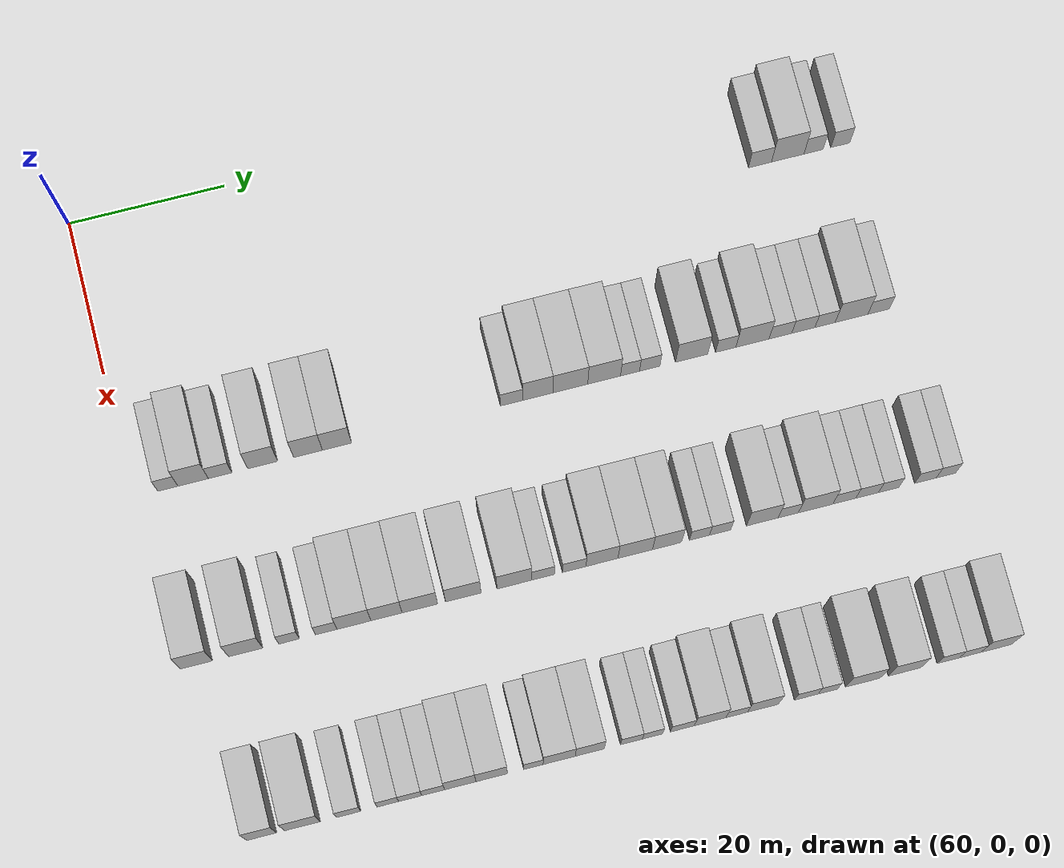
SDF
<sdf version="1.6">
 <world name="default">
  <model name="building_503">
   <static>1</static>
   <pose>69.0000 85.7732 0 0.000000 0.000000 0.000000</pose>
   <link name="link">
    <pose>0 0 3.00 0 0 0</pose>
    <collision name="collision"><geometry><box><size>10.0000 2.9894 6.0000</size></box></geometry></collision>
    <visual name="visual">
     <cast_shadows>0</cast_shadows>
     <geometry><box><size>10.0000 2.9894 6.0000</size></box></geometry>
     <material>
      <script>
       <uri>model://HANNAS_wall/materials/scripts</uri>
       <uri>model://HANNAS_wall/materials/textures</uri>
       <name>vrc/HANNAS_wall</name>
      </script>
     </material>
    </visual>
   </link>
  </model>
  <model name="building_504">
   <static>1</static>
   <pose>69.0000 89.3813 0 0.000000 0.000000 0.000000</pose>
   <link name="link">
    <pose>0 0 4.50 0 0 0</pose>
    <collision name="collision"><geometry><box><size>10.0000 4.2268 9.0000</size></box></geometry></collision>
    <visual name="visual">
     <cast_shadows>0</cast_shadows>
     <geometry><box><size>10.0000 4.2268 9.0000</size></box></geometry>
     <material>
      <script>
       <uri>model://HANNAS_wall/materials/scripts</uri>
       <uri>model://HANNAS_wall/materials/textures</uri>
       <name>vrc/HANNAS_wall</name>
      </script>
     </material>
    </visual>
   </link>
  </model>
  <model name="building_505">
   <static>1</static>
   <pose>69.0000 92.7482 0 0.000000 0.000000 0.000000</pose>
   <link name="link">
    <pose>0 0 3.00 0 0 0</pose>
    <collision name="collision"><geometry><box><size>10.0000 2.5070 6.0000</size></box></geometry></collision>
    <visual name="visual">
     <cast_shadows>0</cast_shadows>
     <geometry><box><size>10.0000 2.5070 6.0000</size></box></geometry>
     <material>
      <script>
       <uri>model://HANNAS_wall/materials/scripts</uri>
       <uri>model://HANNAS_wall/materials/textures</uri>
       <name>vrc/HANNAS_wall</name>
      </script>
     </material>
    </visual>
   </link>
  </model>
  <model name="building_506">
   <static>1</static>
   <pose>69.0000 96.2442 0 0.000000 0.000000 0.000000</pose>
   <link name="link">
    <pose>0 0 3.00 0 0 0</pose>
    <collision name="collision"><geometry><box><size>10.0000 2.4849 6.0000</size></box></geometry></collision>
    <visual name="visual">
     <cast_shadows>0</cast_shadows>
     <geometry><box><size>10.0000 2.4849 6.0000</size></box></geometry>
     <material>
      <script>
       <uri>model://HANNAS_wall/materials/scripts</uri>
       <uri>model://HANNAS_wall/materials/textures</uri>
       <name>vrc/HANNAS_wall</name>
      </script>
     </material>
    </visual>
   </link>
  </model>
  <model name="building_679">
   <static>1</static>
   <pose>91.0000 4.5690 0 0.000000 0.000000 0.000000</pose>
   <link name="link">
    <pose>0 0 3.00 0 0 0</pose>
    <collision name="collision"><geometry><box><size>10.0000 2.5275 6.0000</size></box></geometry></collision>
    <visual name="visual">
     <cast_shadows>0</cast_shadows>
     <geometry><box><size>10.0000 2.5275 6.0000</size></box></geometry>
     <material>
      <script>
       <uri>model://HANNAS_wall/materials/scripts</uri>
       <uri>model://HANNAS_wall/materials/textures</uri>
       <name>vrc/HANNAS_wall</name>
      </script>
     </material>
    </visual>
   </link>
  </model>
  <model name="building_680">
   <static>1</static>
   <pose>91.0000 7.7401 0 0.000000 0.000000 0.000000</pose>
   <link name="link">
    <pose>0 0 4.50 0 0 0</pose>
    <collision name="collision"><geometry><box><size>10.0000 3.8146 9.0000</size></box></geometry></collision>
    <visual name="visual">
     <cast_shadows>0</cast_shadows>
     <geometry><box><size>10.0000 3.8146 9.0000</size></box></geometry>
     <material>
      <script>
       <uri>model://HANNAS_wall/materials/scripts</uri>
       <uri>model://HANNAS_wall/materials/textures</uri>
       <name>vrc/HANNAS_wall</name>
      </script>
     </material>
    </visual>
   </link>
  </model>
  <model name="building_681">
   <static>1</static>
   <pose>91.0000 11.1358 0 0.000000 0.000000 0.000000</pose>
   <link name="link">
    <pose>0 0 3.00 0 0 0</pose>
    <collision name="collision"><geometry><box><size>10.0000 2.9768 6.0000</size></box></geometry></collision>
    <visual name="visual">
     <cast_shadows>0</cast_shadows>
     <geometry><box><size>10.0000 2.9768 6.0000</size></box></geometry>
     <material>
      <script>
       <uri>model://HANNAS_wall/materials/scripts</uri>
       <uri>model://HANNAS_wall/materials/textures</uri>
       <name>vrc/HANNAS_wall</name>
      </script>
     </material>
    </visual>
   </link>
  </model>
  <model name="building_682">
   <static>1</static>
   <pose>91.0000 16.5065 0 0.000000 0.000000 0.000000</pose>
   <link name="link">
    <pose>0 0 4.50 0 0 0</pose>
    <collision name="collision"><geometry><box><size>10.0000 3.7646 9.0000</size></box></geometry></collision>
    <visual name="visual">
     <cast_shadows>0</cast_shadows>
     <geometry><box><size>10.0000 3.7646 9.0000</size></box></geometry>
     <material>
      <script>
       <uri>model://HANNAS_wall/materials/scripts</uri>
       <uri>model://HANNAS_wall/materials/textures</uri>
       <name>vrc/HANNAS_wall</name>
      </script>
     </material>
    </visual>
   </link>
  </model>
  <model name="building_683">
   <static>1</static>
   <pose>91.0000 22.2110 0 0.000000 0.000000 0.000000</pose>
   <link name="link">
    <pose>0 0 4.50 0 0 0</pose>
    <collision name="collision"><geometry><box><size>10.0000 3.6445 9.0000</size></box></geometry></collision>
    <visual name="visual">
     <cast_shadows>0</cast_shadows>
     <geometry><box><size>10.0000 3.6445 9.0000</size></box></geometry>
     <material>
      <script>
       <uri>model://HANNAS_wall/materials/scripts</uri>
       <uri>model://HANNAS_wall/materials/textures</uri>
       <name>vrc/HANNAS_wall</name>
      </script>
     </material>
    </visual>
   </link>
  </model>
  <model name="building_684">
   <static>1</static>
   <pose>91.0000 25.8729 0 0.000000 0.000000 0.000000</pose>
   <link name="link">
    <pose>0 0 4.50 0 0 0</pose>
    <collision name="collision"><geometry><box><size>10.0000 3.6792 9.0000</size></box></geometry></collision>
    <visual name="visual">
     <cast_shadows>0</cast_shadows>
     <geometry><box><size>10.0000 3.6792 9.0000</size></box></geometry>
     <material>
      <script>
       <uri>model://HANNAS_wall/materials/scripts</uri>
       <uri>model://HANNAS_wall/materials/textures</uri>
       <name>vrc/HANNAS_wall</name>
      </script>
     </material>
    </visual>
   </link>
  </model>
  <model name="building_685">
   <static>1</static>
   <pose>91.0000 47.9915 0 0.000000 0.000000 0.000000</pose>
   <link name="link">
    <pose>0 0 3.00 0 0 0</pose>
    <collision name="collision"><geometry><box><size>10.0000 2.8527 6.0000</size></box></geometry></collision>
    <visual name="visual">
     <cast_shadows>0</cast_shadows>
     <geometry><box><size>10.0000 2.8527 6.0000</size></box></geometry>
     <material>
      <script>
       <uri>model://HANNAS_wall/materials/scripts</uri>
       <uri>model://HANNAS_wall/materials/textures</uri>
       <name>vrc/HANNAS_wall</name>
      </script>
     </material>
    </visual>
   </link>
  </model>
  <model name="building_686">
   <static>1</static>
   <pose>91.0000 51.3385 0 0.000000 0.000000 0.000000</pose>
   <link name="link">
    <pose>0 0 4.50 0 0 0</pose>
    <collision name="collision"><geometry><box><size>10.0000 3.8412 9.0000</size></box></geometry></collision>
    <visual name="visual">
     <cast_shadows>0</cast_shadows>
     <geometry><box><size>10.0000 3.8412 9.0000</size></box></geometry>
     <material>
      <script>
       <uri>model://HANNAS_wall/materials/scripts</uri>
       <uri>model://HANNAS_wall/materials/textures</uri>
       <name>vrc/HANNAS_wall</name>
      </script>
     </material>
    </visual>
   </link>
  </model>
  <model name="building_687">
   <static>1</static>
   <pose>91.0000 55.4738 0 0.000000 0.000000 0.000000</pose>
   <link name="link">
    <pose>0 0 4.50 0 0 0</pose>
    <collision name="collision"><geometry><box><size>10.0000 4.4295 9.0000</size></box></geometry></collision>
    <visual name="visual">
     <cast_shadows>0</cast_shadows>
     <geometry><box><size>10.0000 4.4295 9.0000</size></box></geometry>
     <material>
      <script>
       <uri>model://HANNAS_wall/materials/scripts</uri>
       <uri>model://HANNAS_wall/materials/textures</uri>
       <name>vrc/HANNAS_wall</name>
      </script>
     </material>
    </visual>
   </link>
  </model>
  <model name="building_688">
   <static>1</static>
   <pose>91.0000 59.7830 0 0.000000 0.000000 0.000000</pose>
   <link name="link">
    <pose>0 0 4.50 0 0 0</pose>
    <collision name="collision"><geometry><box><size>10.0000 4.1888 9.0000</size></box></geometry></collision>
    <visual name="visual">
     <cast_shadows>0</cast_shadows>
     <geometry><box><size>10.0000 4.1888 9.0000</size></box></geometry>
     <material>
      <script>
       <uri>model://HANNAS_wall/materials/scripts</uri>
       <uri>model://HANNAS_wall/materials/textures</uri>
       <name>vrc/HANNAS_wall</name>
      </script>
     </material>
    </visual>
   </link>
  </model>
  <model name="building_689">
   <static>1</static>
   <pose>91.0000 63.0950 0 0.000000 0.000000 0.000000</pose>
   <link name="link">
    <pose>0 0 3.00 0 0 0</pose>
    <collision name="collision"><geometry><box><size>10.0000 2.4351 6.0000</size></box></geometry></collision>
    <visual name="visual">
     <cast_shadows>0</cast_shadows>
     <geometry><box><size>10.0000 2.4351 6.0000</size></box></geometry>
     <material>
      <script>
       <uri>model://HANNAS_wall/materials/scripts</uri>
       <uri>model://HANNAS_wall/materials/textures</uri>
       <name>vrc/HANNAS_wall</name>
      </script>
     </material>
    </visual>
   </link>
  </model>
  <model name="building_690">
   <static>1</static>
   <pose>91.0000 65.6124 0 0.000000 0.000000 0.000000</pose>
   <link name="link">
    <pose>0 0 3.00 0 0 0</pose>
    <collision name="collision"><geometry><box><size>10.0000 2.5997 6.0000</size></box></geometry></collision>
    <visual name="visual">
     <cast_shadows>0</cast_shadows>
     <geometry><box><size>10.0000 2.5997 6.0000</size></box></geometry>
     <material>
      <script>
       <uri>model://HANNAS_wall/materials/scripts</uri>
       <uri>model://HANNAS_wall/materials/textures</uri>
       <name>vrc/HANNAS_wall</name>
      </script>
     </material>
    </visual>
   </link>
  </model>
  <model name="building_691">
   <static>1</static>
   <pose>91.0000 70.9761 0 0.000000 0.000000 0.000000</pose>
   <link name="link">
    <pose>0 0 4.50 0 0 0</pose>
    <collision name="collision"><geometry><box><size>10.0000 4.1278 9.0000</size></box></geometry></collision>
    <visual name="visual">
     <cast_shadows>0</cast_shadows>
     <geometry><box><size>10.0000 4.1278 9.0000</size></box></geometry>
     <material>
      <script>
       <uri>model://HANNAS_wall/materials/scripts</uri>
       <uri>model://HANNAS_wall/materials/textures</uri>
       <name>vrc/HANNAS_wall</name>
      </script>
     </material>
    </visual>
   </link>
  </model>
  <model name="building_692">
   <static>1</static>
   <pose>91.0000 75.3402 0 0.000000 0.000000 0.000000</pose>
   <link name="link">
    <pose>0 0 3.00 0 0 0</pose>
    <collision name="collision"><geometry><box><size>10.0000 2.6003 6.0000</size></box></geometry></collision>
    <visual name="visual">
     <cast_shadows>0</cast_shadows>
     <geometry><box><size>10.0000 2.6003 6.0000</size></box></geometry>
     <material>
      <script>
       <uri>model://HANNAS_wall/materials/scripts</uri>
       <uri>model://HANNAS_wall/materials/textures</uri>
       <name>vrc/HANNAS_wall</name>
      </script>
     </material>
    </visual>
   </link>
  </model>
  <model name="building_693">
   <static>1</static>
   <pose>91.0000 78.7722 0 0.000000 0.000000 0.000000</pose>
   <link name="link">
    <pose>0 0 4.50 0 0 0</pose>
    <collision name="collision"><geometry><box><size>10.0000 4.2638 9.0000</size></box></geometry></collision>
    <visual name="visual">
     <cast_shadows>0</cast_shadows>
     <geometry><box><size>10.0000 4.2638 9.0000</size></box></geometry>
     <material>
      <script>
       <uri>model://HANNAS_wall/materials/scripts</uri>
       <uri>model://HANNAS_wall/materials/textures</uri>
       <name>vrc/HANNAS_wall</name>
      </script>
     </material>
    </visual>
   </link>
  </model>
  <model name="building_694">
   <static>1</static>
   <pose>91.0000 82.3659 0 0.000000 0.000000 0.000000</pose>
   <link name="link">
    <pose>0 0 3.00 0 0 0</pose>
    <collision name="collision"><geometry><box><size>10.0000 2.9235 6.0000</size></box></geometry></collision>
    <visual name="visual">
     <cast_shadows>0</cast_shadows>
     <geometry><box><size>10.0000 2.9235 6.0000</size></box></geometry>
     <material>
      <script>
       <uri>model://HANNAS_wall/materials/scripts</uri>
       <uri>model://HANNAS_wall/materials/textures</uri>
       <name>vrc/HANNAS_wall</name>
      </script>
     </material>
    </visual>
   </link>
  </model>
  <model name="building_695">
   <static>1</static>
   <pose>91.0000 85.3117 0 0.000000 0.000000 0.000000</pose>
   <link name="link">
    <pose>0 0 3.00 0 0 0</pose>
    <collision name="collision"><geometry><box><size>10.0000 2.9681 6.0000</size></box></geometry></collision>
    <visual name="visual">
     <cast_shadows>0</cast_shadows>
     <geometry><box><size>10.0000 2.9681 6.0000</size></box></geometry>
     <material>
      <script>
       <uri>model://HANNAS_wall/materials/scripts</uri>
       <uri>model://HANNAS_wall/materials/textures</uri>
       <name>vrc/HANNAS_wall</name>
      </script>
     </material>
    </visual>
   </link>
  </model>
  <model name="building_696">
   <static>1</static>
   <pose>91.0000 88.0958 0 0.000000 0.000000 0.000000</pose>
   <link name="link">
    <pose>0 0 3.00 0 0 0</pose>
    <collision name="collision"><geometry><box><size>10.0000 2.6001 6.0000</size></box></geometry></collision>
    <visual name="visual">
     <cast_shadows>0</cast_shadows>
     <geometry><box><size>10.0000 2.6001 6.0000</size></box></geometry>
     <material>
      <script>
       <uri>model://HANNAS_wall/materials/scripts</uri>
       <uri>model://HANNAS_wall/materials/textures</uri>
       <name>vrc/HANNAS_wall</name>
      </script>
     </material>
    </visual>
   </link>
  </model>
  <model name="building_697">
   <static>1</static>
   <pose>91.0000 91.5018 0 0.000000 0.000000 0.000000</pose>
   <link name="link">
    <pose>0 0 4.50 0 0 0</pose>
    <collision name="collision"><geometry><box><size>10.0000 4.2119 9.0000</size></box></geometry></collision>
    <visual name="visual">
     <cast_shadows>0</cast_shadows>
     <geometry><box><size>10.0000 4.2119 9.0000</size></box></geometry>
     <material>
      <script>
       <uri>model://HANNAS_wall/materials/scripts</uri>
       <uri>model://HANNAS_wall/materials/textures</uri>
       <name>vrc/HANNAS_wall</name>
      </script>
     </material>
    </visual>
   </link>
  </model>
  <model name="building_698">
   <static>1</static>
   <pose>91.0000 95.0048 0 0.000000 0.000000 0.000000</pose>
   <link name="link">
    <pose>0 0 3.00 0 0 0</pose>
    <collision name="collision"><geometry><box><size>10.0000 2.7942 6.0000</size></box></geometry></collision>
    <visual name="visual">
     <cast_shadows>0</cast_shadows>
     <geometry><box><size>10.0000 2.7942 6.0000</size></box></geometry>
     <material>
      <script>
       <uri>model://HANNAS_wall/materials/scripts</uri>
       <uri>model://HANNAS_wall/materials/textures</uri>
       <name>vrc/HANNAS_wall</name>
      </script>
     </material>
    </visual>
   </link>
  </model>
  <model name="building_868">
   <static>1</static>
   <pose>113.0000 3.1298 0 0.000000 0.000000 0.000000</pose>
   <link name="link">
    <pose>0 0 4.50 0 0 0</pose>
    <collision name="collision"><geometry><box><size>10.0000 3.9790 9.0000</size></box></geometry></collision>
    <visual name="visual">
     <cast_shadows>0</cast_shadows>
     <geometry><box><size>10.0000 3.9790 9.0000</size></box></geometry>
     <material>
      <script>
       <uri>model://HANNAS_wall/materials/scripts</uri>
       <uri>model://HANNAS_wall/materials/textures</uri>
       <name>vrc/HANNAS_wall</name>
      </script>
     </material>
    </visual>
   </link>
  </model>
  <model name="building_869">
   <static>1</static>
   <pose>113.0000 9.2442 0 0.000000 0.000000 0.000000</pose>
   <link name="link">
    <pose>0 0 4.50 0 0 0</pose>
    <collision name="collision"><geometry><box><size>10.0000 4.2498 9.0000</size></box></geometry></collision>
    <visual name="visual">
     <cast_shadows>0</cast_shadows>
     <geometry><box><size>10.0000 4.2498 9.0000</size></box></geometry>
     <material>
      <script>
       <uri>model://HANNAS_wall/materials/scripts</uri>
       <uri>model://HANNAS_wall/materials/textures</uri>
       <name>vrc/HANNAS_wall</name>
      </script>
     </material>
    </visual>
   </link>
  </model>
  <model name="building_870">
   <static>1</static>
   <pose>113.0000 14.6467 0 0.000000 0.000000 0.000000</pose>
   <link name="link">
    <pose>0 0 3.00 0 0 0</pose>
    <collision name="collision"><geometry><box><size>10.0000 2.5551 6.0000</size></box></geometry></collision>
    <visual name="visual">
     <cast_shadows>0</cast_shadows>
     <geometry><box><size>10.0000 2.5551 6.0000</size></box></geometry>
     <material>
      <script>
       <uri>model://HANNAS_wall/materials/scripts</uri>
       <uri>model://HANNAS_wall/materials/textures</uri>
       <name>vrc/HANNAS_wall</name>
      </script>
     </material>
    </visual>
   </link>
  </model>
  <model name="building_871">
   <static>1</static>
   <pose>113.0000 19.2744 0 0.000000 0.000000 0.000000</pose>
   <link name="link">
    <pose>0 0 3.00 0 0 0</pose>
    <collision name="collision"><geometry><box><size>10.0000 2.7004 6.0000</size></box></geometry></collision>
    <visual name="visual">
     <cast_shadows>0</cast_shadows>
     <geometry><box><size>10.0000 2.7004 6.0000</size></box></geometry>
     <material>
      <script>
       <uri>model://HANNAS_wall/materials/scripts</uri>
       <uri>model://HANNAS_wall/materials/textures</uri>
       <name>vrc/HANNAS_wall</name>
      </script>
     </material>
    </visual>
   </link>
  </model>
  <model name="building_872">
   <static>1</static>
   <pose>113.0000 22.7261 0 0.000000 0.000000 0.000000</pose>
   <link name="link">
    <pose>0 0 4.50 0 0 0</pose>
    <collision name="collision"><geometry><box><size>10.0000 4.2031 9.0000</size></box></geometry></collision>
    <visual name="visual">
     <cast_shadows>0</cast_shadows>
     <geometry><box><size>10.0000 4.2031 9.0000</size></box></geometry>
     <material>
      <script>
       <uri>model://HANNAS_wall/materials/scripts</uri>
       <uri>model://HANNAS_wall/materials/textures</uri>
       <name>vrc/HANNAS_wall</name>
      </script>
     </material>
    </visual>
   </link>
  </model>
  <model name="building_873">
   <static>1</static>
   <pose>113.0000 26.7769 0 0.000000 0.000000 0.000000</pose>
   <link name="link">
    <pose>0 0 4.50 0 0 0</pose>
    <collision name="collision"><geometry><box><size>10.0000 3.8986 9.0000</size></box></geometry></collision>
    <visual name="visual">
     <cast_shadows>0</cast_shadows>
     <geometry><box><size>10.0000 3.8986 9.0000</size></box></geometry>
     <material>
      <script>
       <uri>model://HANNAS_wall/materials/scripts</uri>
       <uri>model://HANNAS_wall/materials/textures</uri>
       <name>vrc/HANNAS_wall</name>
      </script>
     </material>
    </visual>
   </link>
  </model>
  <model name="building_874">
   <static>1</static>
   <pose>113.0000 30.9383 0 0.000000 0.000000 0.000000</pose>
   <link name="link">
    <pose>0 0 4.50 0 0 0</pose>
    <collision name="collision"><geometry><box><size>10.0000 4.4242 9.0000</size></box></geometry></collision>
    <visual name="visual">
     <cast_shadows>0</cast_shadows>
     <geometry><box><size>10.0000 4.4242 9.0000</size></box></geometry>
     <material>
      <script>
       <uri>model://HANNAS_wall/materials/scripts</uri>
       <uri>model://HANNAS_wall/materials/textures</uri>
       <name>vrc/HANNAS_wall</name>
      </script>
     </material>
    </visual>
   </link>
  </model>
  <model name="building_875">
   <static>1</static>
   <pose>113.0000 36.3707 0 0.000000 0.000000 0.000000</pose>
   <link name="link">
    <pose>0 0 4.50 0 0 0</pose>
    <collision name="collision"><geometry><box><size>10.0000 4.4405 9.0000</size></box></geometry></collision>
    <visual name="visual">
     <cast_shadows>0</cast_shadows>
     <geometry><box><size>10.0000 4.4405 9.0000</size></box></geometry>
     <material>
      <script>
       <uri>model://HANNAS_wall/materials/scripts</uri>
       <uri>model://HANNAS_wall/materials/textures</uri>
       <name>vrc/HANNAS_wall</name>
      </script>
     </material>
    </visual>
   </link>
  </model>
  <model name="building_876">
   <static>1</static>
   <pose>113.0000 42.7768 0 0.000000 0.000000 0.000000</pose>
   <link name="link">
    <pose>0 0 4.50 0 0 0</pose>
    <collision name="collision"><geometry><box><size>10.0000 4.3717 9.0000</size></box></geometry></collision>
    <visual name="visual">
     <cast_shadows>0</cast_shadows>
     <geometry><box><size>10.0000 4.3717 9.0000</size></box></geometry>
     <material>
      <script>
       <uri>model://HANNAS_wall/materials/scripts</uri>
       <uri>model://HANNAS_wall/materials/textures</uri>
       <name>vrc/HANNAS_wall</name>
      </script>
     </material>
    </visual>
   </link>
  </model>
  <model name="building_877">
   <static>1</static>
   <pose>113.0000 46.3763 0 0.000000 0.000000 0.000000</pose>
   <link name="link">
    <pose>0 0 3.00 0 0 0</pose>
    <collision name="collision"><geometry><box><size>10.0000 2.8271 6.0000</size></box></geometry></collision>
    <visual name="visual">
     <cast_shadows>0</cast_shadows>
     <geometry><box><size>10.0000 2.8271 6.0000</size></box></geometry>
     <material>
      <script>
       <uri>model://HANNAS_wall/materials/scripts</uri>
       <uri>model://HANNAS_wall/materials/textures</uri>
       <name>vrc/HANNAS_wall</name>
      </script>
     </material>
    </visual>
   </link>
  </model>
  <model name="building_878">
   <static>1</static>
   <pose>113.0000 50.2694 0 0.000000 0.000000 0.000000</pose>
   <link name="link">
    <pose>0 0 3.00 0 0 0</pose>
    <collision name="collision"><geometry><box><size>10.0000 2.9590 6.0000</size></box></geometry></collision>
    <visual name="visual">
     <cast_shadows>0</cast_shadows>
     <geometry><box><size>10.0000 2.9590 6.0000</size></box></geometry>
     <material>
      <script>
       <uri>model://HANNAS_wall/materials/scripts</uri>
       <uri>model://HANNAS_wall/materials/textures</uri>
       <name>vrc/HANNAS_wall</name>
      </script>
     </material>
    </visual>
   </link>
  </model>
  <model name="building_879">
   <static>1</static>
   <pose>113.0000 53.7605 0 0.000000 0.000000 0.000000</pose>
   <link name="link">
    <pose>0 0 4.50 0 0 0</pose>
    <collision name="collision"><geometry><box><size>10.0000 4.0233 9.0000</size></box></geometry></collision>
    <visual name="visual">
     <cast_shadows>0</cast_shadows>
     <geometry><box><size>10.0000 4.0233 9.0000</size></box></geometry>
     <material>
      <script>
       <uri>model://HANNAS_wall/materials/scripts</uri>
       <uri>model://HANNAS_wall/materials/textures</uri>
       <name>vrc/HANNAS_wall</name>
      </script>
     </material>
    </visual>
   </link>
  </model>
  <model name="building_880">
   <static>1</static>
   <pose>113.0000 57.9547 0 0.000000 0.000000 0.000000</pose>
   <link name="link">
    <pose>0 0 4.50 0 0 0</pose>
    <collision name="collision"><geometry><box><size>10.0000 4.3651 9.0000</size></box></geometry></collision>
    <visual name="visual">
     <cast_shadows>0</cast_shadows>
     <geometry><box><size>10.0000 4.3651 9.0000</size></box></geometry>
     <material>
      <script>
       <uri>model://HANNAS_wall/materials/scripts</uri>
       <uri>model://HANNAS_wall/materials/textures</uri>
       <name>vrc/HANNAS_wall</name>
      </script>
     </material>
    </visual>
   </link>
  </model>
  <model name="building_881">
   <static>1</static>
   <pose>113.0000 61.9706 0 0.000000 0.000000 0.000000</pose>
   <link name="link">
    <pose>0 0 4.50 0 0 0</pose>
    <collision name="collision"><geometry><box><size>10.0000 3.6666 9.0000</size></box></geometry></collision>
    <visual name="visual">
     <cast_shadows>0</cast_shadows>
     <geometry><box><size>10.0000 3.6666 9.0000</size></box></geometry>
     <material>
      <script>
       <uri>model://HANNAS_wall/materials/scripts</uri>
       <uri>model://HANNAS_wall/materials/textures</uri>
       <name>vrc/HANNAS_wall</name>
      </script>
     </material>
    </visual>
   </link>
  </model>
  <model name="building_882">
   <static>1</static>
   <pose>113.0000 66.0667 0 0.000000 0.000000 0.000000</pose>
   <link name="link">
    <pose>0 0 3.00 0 0 0</pose>
    <collision name="collision"><geometry><box><size>10.0000 2.5257 6.0000</size></box></geometry></collision>
    <visual name="visual">
     <cast_shadows>0</cast_shadows>
     <geometry><box><size>10.0000 2.5257 6.0000</size></box></geometry>
     <material>
      <script>
       <uri>model://HANNAS_wall/materials/scripts</uri>
       <uri>model://HANNAS_wall/materials/textures</uri>
       <name>vrc/HANNAS_wall</name>
      </script>
     </material>
    </visual>
   </link>
  </model>
  <model name="building_883">
   <static>1</static>
   <pose>113.0000 68.6682 0 0.000000 0.000000 0.000000</pose>
   <link name="link">
    <pose>0 0 3.00 0 0 0</pose>
    <collision name="collision"><geometry><box><size>10.0000 2.6773 6.0000</size></box></geometry></collision>
    <visual name="visual">
     <cast_shadows>0</cast_shadows>
     <geometry><box><size>10.0000 2.6773 6.0000</size></box></geometry>
     <material>
      <script>
       <uri>model://HANNAS_wall/materials/scripts</uri>
       <uri>model://HANNAS_wall/materials/textures</uri>
       <name>vrc/HANNAS_wall</name>
      </script>
     </material>
    </visual>
   </link>
  </model>
  <model name="building_884">
   <static>1</static>
   <pose>113.0000 74.0028 0 0.000000 0.000000 0.000000</pose>
   <link name="link">
    <pose>0 0 4.50 0 0 0</pose>
    <collision name="collision"><geometry><box><size>10.0000 3.9918 9.0000</size></box></geometry></collision>
    <visual name="visual">
     <cast_shadows>0</cast_shadows>
     <geometry><box><size>10.0000 3.9918 9.0000</size></box></geometry>
     <material>
      <script>
       <uri>model://HANNAS_wall/materials/scripts</uri>
       <uri>model://HANNAS_wall/materials/textures</uri>
       <name>vrc/HANNAS_wall</name>
      </script>
     </material>
    </visual>
   </link>
  </model>
  <model name="building_885">
   <static>1</static>
   <pose>113.0000 77.2912 0 0.000000 0.000000 0.000000</pose>
   <link name="link">
    <pose>0 0 3.00 0 0 0</pose>
    <collision name="collision"><geometry><box><size>10.0000 2.5850 6.0000</size></box></geometry></collision>
    <visual name="visual">
     <cast_shadows>0</cast_shadows>
     <geometry><box><size>10.0000 2.5850 6.0000</size></box></geometry>
     <material>
      <script>
       <uri>model://HANNAS_wall/materials/scripts</uri>
       <uri>model://HANNAS_wall/materials/textures</uri>
       <name>vrc/HANNAS_wall</name>
      </script>
     </material>
    </visual>
   </link>
  </model>
  <model name="building_886">
   <static>1</static>
   <pose>113.0000 80.7679 0 0.000000 0.000000 0.000000</pose>
   <link name="link">
    <pose>0 0 4.50 0 0 0</pose>
    <collision name="collision"><geometry><box><size>10.0000 4.3685 9.0000</size></box></geometry></collision>
    <visual name="visual">
     <cast_shadows>0</cast_shadows>
     <geometry><box><size>10.0000 4.3685 9.0000</size></box></geometry>
     <material>
      <script>
       <uri>model://HANNAS_wall/materials/scripts</uri>
       <uri>model://HANNAS_wall/materials/textures</uri>
       <name>vrc/HANNAS_wall</name>
      </script>
     </material>
    </visual>
   </link>
  </model>
  <model name="building_887">
   <static>1</static>
   <pose>113.0000 84.4103 0 0.000000 0.000000 0.000000</pose>
   <link name="link">
    <pose>0 0 3.00 0 0 0</pose>
    <collision name="collision"><geometry><box><size>10.0000 2.9162 6.0000</size></box></geometry></collision>
    <visual name="visual">
     <cast_shadows>0</cast_shadows>
     <geometry><box><size>10.0000 2.9162 6.0000</size></box></geometry>
     <material>
      <script>
       <uri>model://HANNAS_wall/materials/scripts</uri>
       <uri>model://HANNAS_wall/materials/textures</uri>
       <name>vrc/HANNAS_wall</name>
      </script>
     </material>
    </visual>
   </link>
  </model>
  <model name="building_888">
   <static>1</static>
   <pose>113.0000 87.3077 0 0.000000 0.000000 0.000000</pose>
   <link name="link">
    <pose>0 0 3.00 0 0 0</pose>
    <collision name="collision"><geometry><box><size>10.0000 2.8788 6.0000</size></box></geometry></collision>
    <visual name="visual">
     <cast_shadows>0</cast_shadows>
     <geometry><box><size>10.0000 2.8788 6.0000</size></box></geometry>
     <material>
      <script>
       <uri>model://HANNAS_wall/materials/scripts</uri>
       <uri>model://HANNAS_wall/materials/textures</uri>
       <name>vrc/HANNAS_wall</name>
      </script>
     </material>
    </visual>
   </link>
  </model>
  <model name="building_889">
   <static>1</static>
   <pose>113.0000 90.0576 0 0.000000 0.000000 0.000000</pose>
   <link name="link">
    <pose>0 0 3.00 0 0 0</pose>
    <collision name="collision"><geometry><box><size>10.0000 2.6209 6.0000</size></box></geometry></collision>
    <visual name="visual">
     <cast_shadows>0</cast_shadows>
     <geometry><box><size>10.0000 2.6209 6.0000</size></box></geometry>
     <material>
      <script>
       <uri>model://HANNAS_wall/materials/scripts</uri>
       <uri>model://HANNAS_wall/materials/textures</uri>
       <name>vrc/HANNAS_wall</name>
      </script>
     </material>
    </visual>
   </link>
  </model>
  <model name="building_890">
   <static>1</static>
   <pose>113.0000 94.7495 0 0.000000 0.000000 0.000000</pose>
   <link name="link">
    <pose>0 0 3.00 0 0 0</pose>
    <collision name="collision"><geometry><box><size>10.0000 2.7629 6.0000</size></box></geometry></collision>
    <visual name="visual">
     <cast_shadows>0</cast_shadows>
     <geometry><box><size>10.0000 2.7629 6.0000</size></box></geometry>
     <material>
      <script>
       <uri>model://HANNAS_wall/materials/scripts</uri>
       <uri>model://HANNAS_wall/materials/textures</uri>
       <name>vrc/HANNAS_wall</name>
      </script>
     </material>
    </visual>
   </link>
  </model>
  <model name="building_891">
   <static>1</static>
   <pose>113.0000 97.3684 0 0.000000 0.000000 0.000000</pose>
   <link name="link">
    <pose>0 0 3.00 0 0 0</pose>
    <collision name="collision"><geometry><box><size>10.0000 2.4749 6.0000</size></box></geometry></collision>
    <visual name="visual">
     <cast_shadows>0</cast_shadows>
     <geometry><box><size>10.0000 2.4749 6.0000</size></box></geometry>
     <material>
      <script>
       <uri>model://HANNAS_wall/materials/scripts</uri>
       <uri>model://HANNAS_wall/materials/textures</uri>
       <name>vrc/HANNAS_wall</name>
      </script>
     </material>
    </visual>
   </link>
  </model>
  <model name="building_1055">
   <static>1</static>
   <pose>135.0000 6.1054 0 0.000000 0.000000 0.000000</pose>
   <link name="link">
    <pose>0 0 4.50 0 0 0</pose>
    <collision name="collision"><geometry><box><size>10.0000 3.6375 9.0000</size></box></geometry></collision>
    <visual name="visual">
     <cast_shadows>0</cast_shadows>
     <geometry><box><size>10.0000 3.6375 9.0000</size></box></geometry>
     <material>
      <script>
       <uri>model://HANNAS_wall/materials/scripts</uri>
       <uri>model://HANNAS_wall/materials/textures</uri>
       <name>vrc/HANNAS_wall</name>
      </script>
     </material>
    </visual>
   </link>
  </model>
  <model name="building_1056">
   <static>1</static>
   <pose>135.0000 11.1089 0 0.000000 0.000000 0.000000</pose>
   <link name="link">
    <pose>0 0 4.50 0 0 0</pose>
    <collision name="collision"><geometry><box><size>10.0000 4.3696 9.0000</size></box></geometry></collision>
    <visual name="visual">
     <cast_shadows>0</cast_shadows>
     <geometry><box><size>10.0000 4.3696 9.0000</size></box></geometry>
     <material>
      <script>
       <uri>model://HANNAS_wall/materials/scripts</uri>
       <uri>model://HANNAS_wall/materials/textures</uri>
       <name>vrc/HANNAS_wall</name>
      </script>
     </material>
    </visual>
   </link>
  </model>
  <model name="building_1057">
   <static>1</static>
   <pose>135.0000 16.7800 0 0.000000 0.000000 0.000000</pose>
   <link name="link">
    <pose>0 0 3.00 0 0 0</pose>
    <collision name="collision"><geometry><box><size>10.0000 2.9725 6.0000</size></box></geometry></collision>
    <visual name="visual">
     <cast_shadows>0</cast_shadows>
     <geometry><box><size>10.0000 2.9725 6.0000</size></box></geometry>
     <material>
      <script>
       <uri>model://HANNAS_wall/materials/scripts</uri>
       <uri>model://HANNAS_wall/materials/textures</uri>
       <name>vrc/HANNAS_wall</name>
      </script>
     </material>
    </visual>
   </link>
  </model>
  <model name="building_1058">
   <static>1</static>
   <pose>135.0000 21.5898 0 0.000000 0.000000 0.000000</pose>
   <link name="link">
    <pose>0 0 3.00 0 0 0</pose>
    <collision name="collision"><geometry><box><size>10.0000 2.6471 6.0000</size></box></geometry></collision>
    <visual name="visual">
     <cast_shadows>0</cast_shadows>
     <geometry><box><size>10.0000 2.6471 6.0000</size></box></geometry>
     <material>
      <script>
       <uri>model://HANNAS_wall/materials/scripts</uri>
       <uri>model://HANNAS_wall/materials/textures</uri>
       <name>vrc/HANNAS_wall</name>
      </script>
     </material>
    </visual>
   </link>
  </model>
  <model name="building_1059">
   <static>1</static>
   <pose>135.0000 24.3389 0 0.000000 0.000000 0.000000</pose>
   <link name="link">
    <pose>0 0 3.00 0 0 0</pose>
    <collision name="collision"><geometry><box><size>10.0000 2.8512 6.0000</size></box></geometry></collision>
    <visual name="visual">
     <cast_shadows>0</cast_shadows>
     <geometry><box><size>10.0000 2.8512 6.0000</size></box></geometry>
     <material>
      <script>
       <uri>model://HANNAS_wall/materials/scripts</uri>
       <uri>model://HANNAS_wall/materials/textures</uri>
       <name>vrc/HANNAS_wall</name>
      </script>
     </material>
    </visual>
   </link>
  </model>
  <model name="building_1060">
   <static>1</static>
   <pose>135.0000 27.1635 0 0.000000 0.000000 0.000000</pose>
   <link name="link">
    <pose>0 0 3.00 0 0 0</pose>
    <collision name="collision"><geometry><box><size>10.0000 2.7980 6.0000</size></box></geometry></collision>
    <visual name="visual">
     <cast_shadows>0</cast_shadows>
     <geometry><box><size>10.0000 2.7980 6.0000</size></box></geometry>
     <material>
      <script>
       <uri>model://HANNAS_wall/materials/scripts</uri>
       <uri>model://HANNAS_wall/materials/textures</uri>
       <name>vrc/HANNAS_wall</name>
      </script>
     </material>
    </visual>
   </link>
  </model>
  <model name="building_1061">
   <static>1</static>
   <pose>135.0000 30.4983 0 0.000000 0.000000 0.000000</pose>
   <link name="link">
    <pose>0 0 4.50 0 0 0</pose>
    <collision name="collision"><geometry><box><size>10.0000 3.8718 9.0000</size></box></geometry></collision>
    <visual name="visual">
     <cast_shadows>0</cast_shadows>
     <geometry><box><size>10.0000 3.8718 9.0000</size></box></geometry>
     <material>
      <script>
       <uri>model://HANNAS_wall/materials/scripts</uri>
       <uri>model://HANNAS_wall/materials/textures</uri>
       <name>vrc/HANNAS_wall</name>
      </script>
     </material>
    </visual>
   </link>
  </model>
  <model name="building_1062">
   <static>1</static>
   <pose>135.0000 34.3791 0 0.000000 0.000000 0.000000</pose>
   <link name="link">
    <pose>0 0 4.50 0 0 0</pose>
    <collision name="collision"><geometry><box><size>10.0000 3.8896 9.0000</size></box></geometry></collision>
    <visual name="visual">
     <cast_shadows>0</cast_shadows>
     <geometry><box><size>10.0000 3.8896 9.0000</size></box></geometry>
     <material>
      <script>
       <uri>model://HANNAS_wall/materials/scripts</uri>
       <uri>model://HANNAS_wall/materials/textures</uri>
       <name>vrc/HANNAS_wall</name>
      </script>
     </material>
    </visual>
   </link>
  </model>
  <model name="building_1063">
   <static>1</static>
   <pose>135.0000 39.5305 0 0.000000 0.000000 0.000000</pose>
   <link name="link">
    <pose>0 0 3.00 0 0 0</pose>
    <collision name="collision"><geometry><box><size>10.0000 2.4132 6.0000</size></box></geometry></collision>
    <visual name="visual">
     <cast_shadows>0</cast_shadows>
     <geometry><box><size>10.0000 2.4132 6.0000</size></box></geometry>
     <material>
      <script>
       <uri>model://HANNAS_wall/materials/scripts</uri>
       <uri>model://HANNAS_wall/materials/textures</uri>
       <name>vrc/HANNAS_wall</name>
      </script>
     </material>
    </visual>
   </link>
  </model>
  <model name="building_1064">
   <static>1</static>
   <pose>135.0000 42.7266 0 0.000000 0.000000 0.000000</pose>
   <link name="link">
    <pose>0 0 4.50 0 0 0</pose>
    <collision name="collision"><geometry><box><size>10.0000 3.9791 9.0000</size></box></geometry></collision>
    <visual name="visual">
     <cast_shadows>0</cast_shadows>
     <geometry><box><size>10.0000 3.9791 9.0000</size></box></geometry>
     <material>
      <script>
       <uri>model://HANNAS_wall/materials/scripts</uri>
       <uri>model://HANNAS_wall/materials/textures</uri>
       <name>vrc/HANNAS_wall</name>
      </script>
     </material>
    </visual>
   </link>
  </model>
  <model name="building_1065">
   <static>1</static>
   <pose>135.0000 46.5171 0 0.000000 0.000000 0.000000</pose>
   <link name="link">
    <pose>0 0 4.50 0 0 0</pose>
    <collision name="collision"><geometry><box><size>10.0000 3.6020 9.0000</size></box></geometry></collision>
    <visual name="visual">
     <cast_shadows>0</cast_shadows>
     <geometry><box><size>10.0000 3.6020 9.0000</size></box></geometry>
     <material>
      <script>
       <uri>model://HANNAS_wall/materials/scripts</uri>
       <uri>model://HANNAS_wall/materials/textures</uri>
       <name>vrc/HANNAS_wall</name>
      </script>
     </material>
    </visual>
   </link>
  </model>
  <model name="building_1066">
   <static>1</static>
   <pose>135.0000 51.6804 0 0.000000 0.000000 0.000000</pose>
   <link name="link">
    <pose>0 0 3.00 0 0 0</pose>
    <collision name="collision"><geometry><box><size>10.0000 2.7245 6.0000</size></box></geometry></collision>
    <visual name="visual">
     <cast_shadows>0</cast_shadows>
     <geometry><box><size>10.0000 2.7245 6.0000</size></box></geometry>
     <material>
      <script>
       <uri>model://HANNAS_wall/materials/scripts</uri>
       <uri>model://HANNAS_wall/materials/textures</uri>
       <name>vrc/HANNAS_wall</name>
      </script>
     </material>
    </visual>
   </link>
  </model>
  <model name="building_1067">
   <static>1</static>
   <pose>135.0000 54.2911 0 0.000000 0.000000 0.000000</pose>
   <link name="link">
    <pose>0 0 3.00 0 0 0</pose>
    <collision name="collision"><geometry><box><size>10.0000 2.4969 6.0000</size></box></geometry></collision>
    <visual name="visual">
     <cast_shadows>0</cast_shadows>
     <geometry><box><size>10.0000 2.4969 6.0000</size></box></geometry>
     <material>
      <script>
       <uri>model://HANNAS_wall/materials/scripts</uri>
       <uri>model://HANNAS_wall/materials/textures</uri>
       <name>vrc/HANNAS_wall</name>
      </script>
     </material>
    </visual>
   </link>
  </model>
  <model name="building_1068">
   <static>1</static>
   <pose>135.0000 58.0160 0 0.000000 0.000000 0.000000</pose>
   <link name="link">
    <pose>0 0 3.00 0 0 0</pose>
    <collision name="collision"><geometry><box><size>10.0000 2.9530 6.0000</size></box></geometry></collision>
    <visual name="visual">
     <cast_shadows>0</cast_shadows>
     <geometry><box><size>10.0000 2.9530 6.0000</size></box></geometry>
     <material>
      <script>
       <uri>model://HANNAS_wall/materials/scripts</uri>
       <uri>model://HANNAS_wall/materials/textures</uri>
       <name>vrc/HANNAS_wall</name>
      </script>
     </material>
    </visual>
   </link>
  </model>
  <model name="building_1069">
   <static>1</static>
   <pose>135.0000 61.4637 0 0.000000 0.000000 0.000000</pose>
   <link name="link">
    <pose>0 0 4.50 0 0 0</pose>
    <collision name="collision"><geometry><box><size>10.0000 3.9423 9.0000</size></box></geometry></collision>
    <visual name="visual">
     <cast_shadows>0</cast_shadows>
     <geometry><box><size>10.0000 3.9423 9.0000</size></box></geometry>
     <material>
      <script>
       <uri>model://HANNAS_wall/materials/scripts</uri>
       <uri>model://HANNAS_wall/materials/textures</uri>
       <name>vrc/HANNAS_wall</name>
      </script>
     </material>
    </visual>
   </link>
  </model>
  <model name="building_1070">
   <static>1</static>
   <pose>135.0000 64.7793 0 0.000000 0.000000 0.000000</pose>
   <link name="link">
    <pose>0 0 3.00 0 0 0</pose>
    <collision name="collision"><geometry><box><size>10.0000 2.6889 6.0000</size></box></geometry></collision>
    <visual name="visual">
     <cast_shadows>0</cast_shadows>
     <geometry><box><size>10.0000 2.6889 6.0000</size></box></geometry>
     <material>
      <script>
       <uri>model://HANNAS_wall/materials/scripts</uri>
       <uri>model://HANNAS_wall/materials/textures</uri>
       <name>vrc/HANNAS_wall</name>
      </script>
     </material>
    </visual>
   </link>
  </model>
  <model name="building_1071">
   <static>1</static>
   <pose>135.0000 68.0591 0 0.000000 0.000000 0.000000</pose>
   <link name="link">
    <pose>0 0 4.50 0 0 0</pose>
    <collision name="collision"><geometry><box><size>10.0000 3.8706 9.0000</size></box></geometry></collision>
    <visual name="visual">
     <cast_shadows>0</cast_shadows>
     <geometry><box><size>10.0000 3.8706 9.0000</size></box></geometry>
     <material>
      <script>
       <uri>model://HANNAS_wall/materials/scripts</uri>
       <uri>model://HANNAS_wall/materials/textures</uri>
       <name>vrc/HANNAS_wall</name>
      </script>
     </material>
    </visual>
   </link>
  </model>
  <model name="building_1072">
   <static>1</static>
   <pose>135.0000 73.4825 0 0.000000 0.000000 0.000000</pose>
   <link name="link">
    <pose>0 0 3.00 0 0 0</pose>
    <collision name="collision"><geometry><box><size>10.0000 2.9762 6.0000</size></box></geometry></collision>
    <visual name="visual">
     <cast_shadows>0</cast_shadows>
     <geometry><box><size>10.0000 2.9762 6.0000</size></box></geometry>
     <material>
      <script>
       <uri>model://HANNAS_wall/materials/scripts</uri>
       <uri>model://HANNAS_wall/materials/textures</uri>
       <name>vrc/HANNAS_wall</name>
      </script>
     </material>
    </visual>
   </link>
  </model>
  <model name="building_1073">
   <static>1</static>
   <pose>135.0000 76.1816 0 0.000000 0.000000 0.000000</pose>
   <link name="link">
    <pose>0 0 3.00 0 0 0</pose>
    <collision name="collision"><geometry><box><size>10.0000 2.4220 6.0000</size></box></geometry></collision>
    <visual name="visual">
     <cast_shadows>0</cast_shadows>
     <geometry><box><size>10.0000 2.4220 6.0000</size></box></geometry>
     <material>
      <script>
       <uri>model://HANNAS_wall/materials/scripts</uri>
       <uri>model://HANNAS_wall/materials/textures</uri>
       <name>vrc/HANNAS_wall</name>
      </script>
     </material>
    </visual>
   </link>
  </model>
  <model name="building_1074">
   <static>1</static>
   <pose>135.0000 80.5764 0 0.000000 0.000000 0.000000</pose>
   <link name="link">
    <pose>0 0 4.50 0 0 0</pose>
    <collision name="collision"><geometry><box><size>10.0000 4.3676 9.0000</size></box></geometry></collision>
    <visual name="visual">
     <cast_shadows>0</cast_shadows>
     <geometry><box><size>10.0000 4.3676 9.0000</size></box></geometry>
     <material>
      <script>
       <uri>model://HANNAS_wall/materials/scripts</uri>
       <uri>model://HANNAS_wall/materials/textures</uri>
       <name>vrc/HANNAS_wall</name>
      </script>
     </material>
    </visual>
   </link>
  </model>
  <model name="building_1075">
   <static>1</static>
   <pose>135.0000 85.8238 0 0.000000 0.000000 0.000000</pose>
   <link name="link">
    <pose>0 0 4.50 0 0 0</pose>
    <collision name="collision"><geometry><box><size>10.0000 4.1273 9.0000</size></box></geometry></collision>
    <visual name="visual">
     <cast_shadows>0</cast_shadows>
     <geometry><box><size>10.0000 4.1273 9.0000</size></box></geometry>
     <material>
      <script>
       <uri>model://HANNAS_wall/materials/scripts</uri>
       <uri>model://HANNAS_wall/materials/textures</uri>
       <name>vrc/HANNAS_wall</name>
      </script>
     </material>
    </visual>
   </link>
  </model>
  <model name="building_1076">
   <static>1</static>
   <pose>135.0000 91.2862 0 0.000000 0.000000 0.000000</pose>
   <link name="link">
    <pose>0 0 3.00 0 0 0</pose>
    <collision name="collision"><geometry><box><size>10.0000 2.7976 6.0000</size></box></geometry></collision>
    <visual name="visual">
     <cast_shadows>0</cast_shadows>
     <geometry><box><size>10.0000 2.7976 6.0000</size></box></geometry>
     <material>
      <script>
       <uri>model://HANNAS_wall/materials/scripts</uri>
       <uri>model://HANNAS_wall/materials/textures</uri>
       <name>vrc/HANNAS_wall</name>
      </script>
     </material>
    </visual>
   </link>
  </model>
  <model name="building_1077">
   <static>1</static>
   <pose>135.0000 94.0594 0 0.000000 0.000000 0.000000</pose>
   <link name="link">
    <pose>0 0 3.00 0 0 0</pose>
    <collision name="collision"><geometry><box><size>10.0000 2.7488 6.0000</size></box></geometry></collision>
    <visual name="visual">
     <cast_shadows>0</cast_shadows>
     <geometry><box><size>10.0000 2.7488 6.0000</size></box></geometry>
     <material>
      <script>
       <uri>model://HANNAS_wall/materials/scripts</uri>
       <uri>model://HANNAS_wall/materials/textures</uri>
       <name>vrc/HANNAS_wall</name>
      </script>
     </material>
    </visual>
   </link>
  </model>
  <model name="building_1078">
   <static>1</static>
   <pose>135.0000 97.3456 0 0.000000 0.000000 0.000000</pose>
   <link name="link">
    <pose>0 0 4.50 0 0 0</pose>
    <collision name="collision"><geometry><box><size>10.0000 3.8234 9.0000</size></box></geometry></collision>
    <visual name="visual">
     <cast_shadows>0</cast_shadows>
     <geometry><box><size>10.0000 3.8234 9.0000</size></box></geometry>
     <material>
      <script>
       <uri>model://HANNAS_wall/materials/scripts</uri>
       <uri>model://HANNAS_wall/materials/textures</uri>
       <name>vrc/HANNAS_wall</name>
      </script>
     </material>
    </visual>
   </link>
  </model>
 </world>
</sdf>
